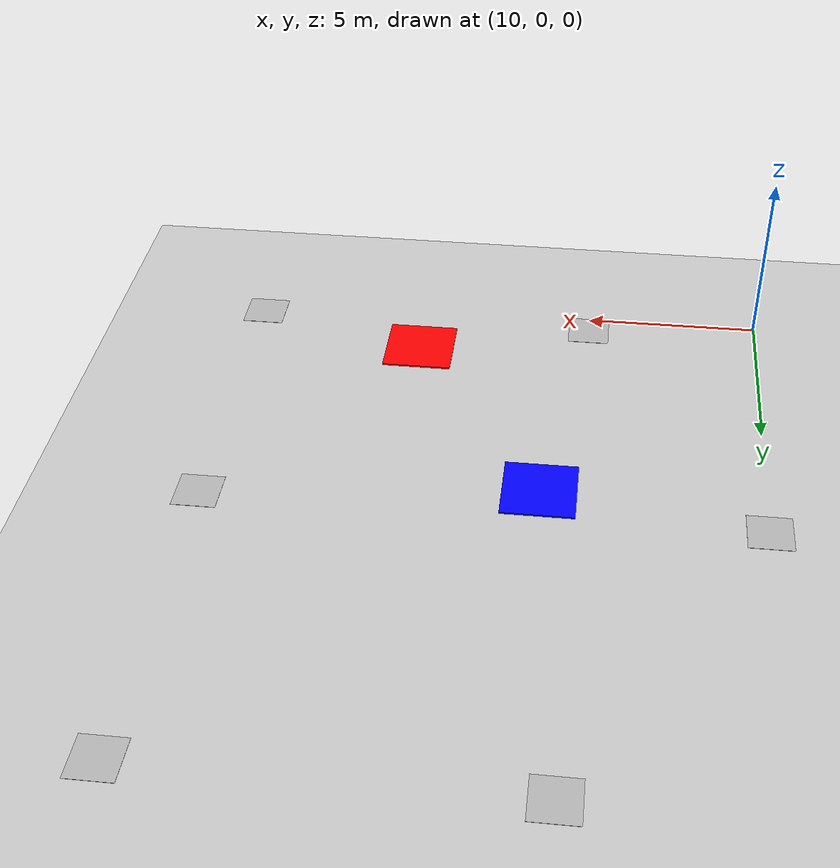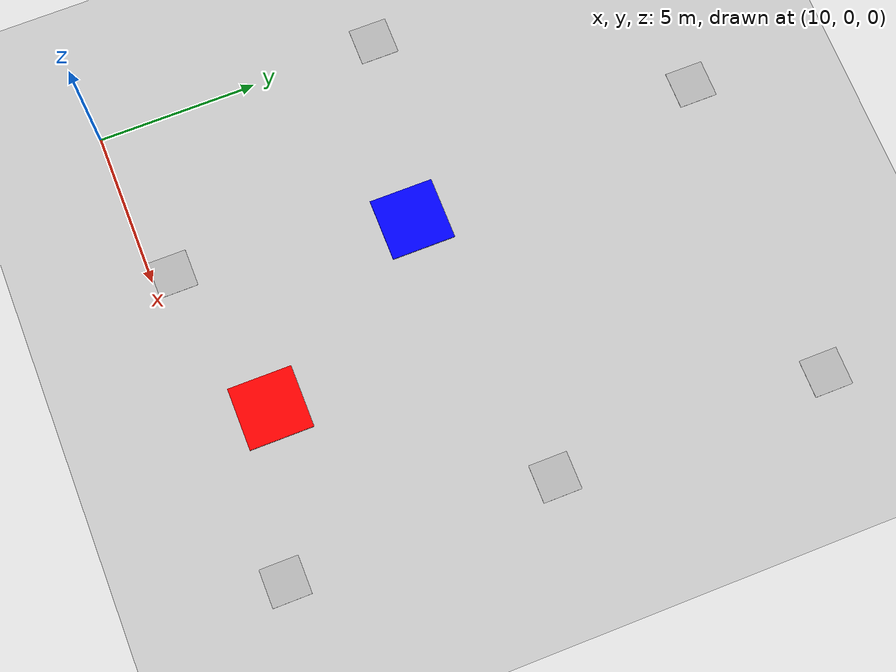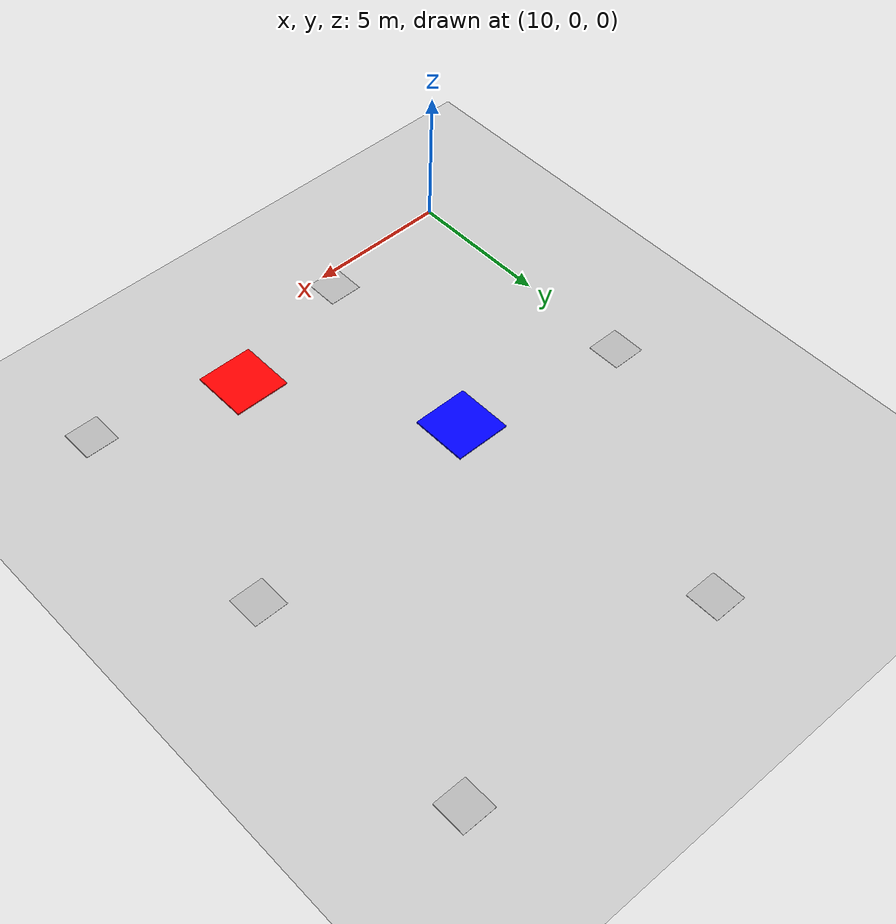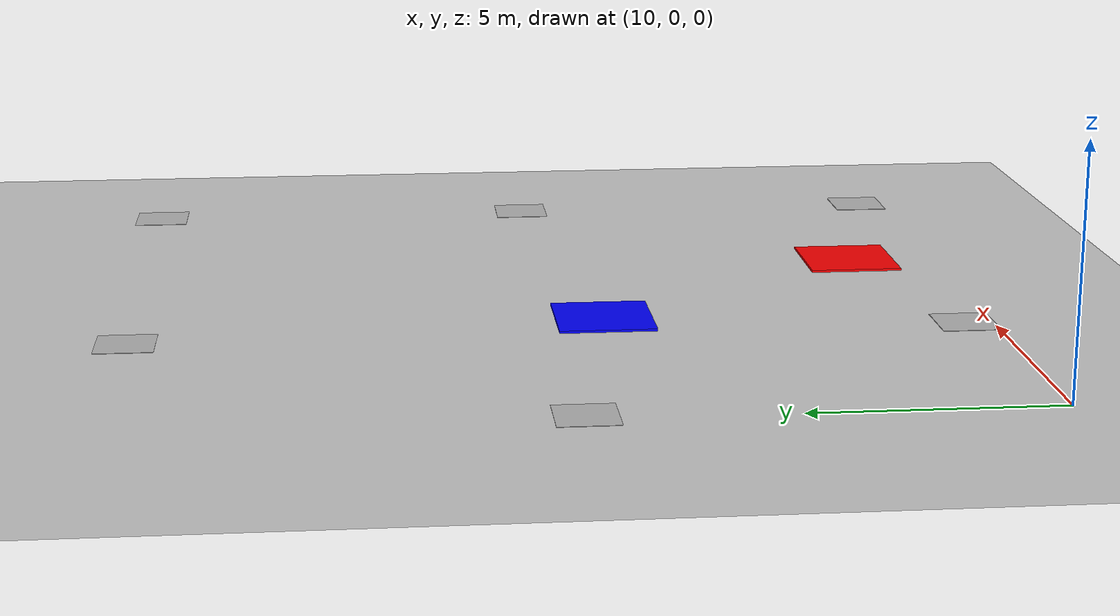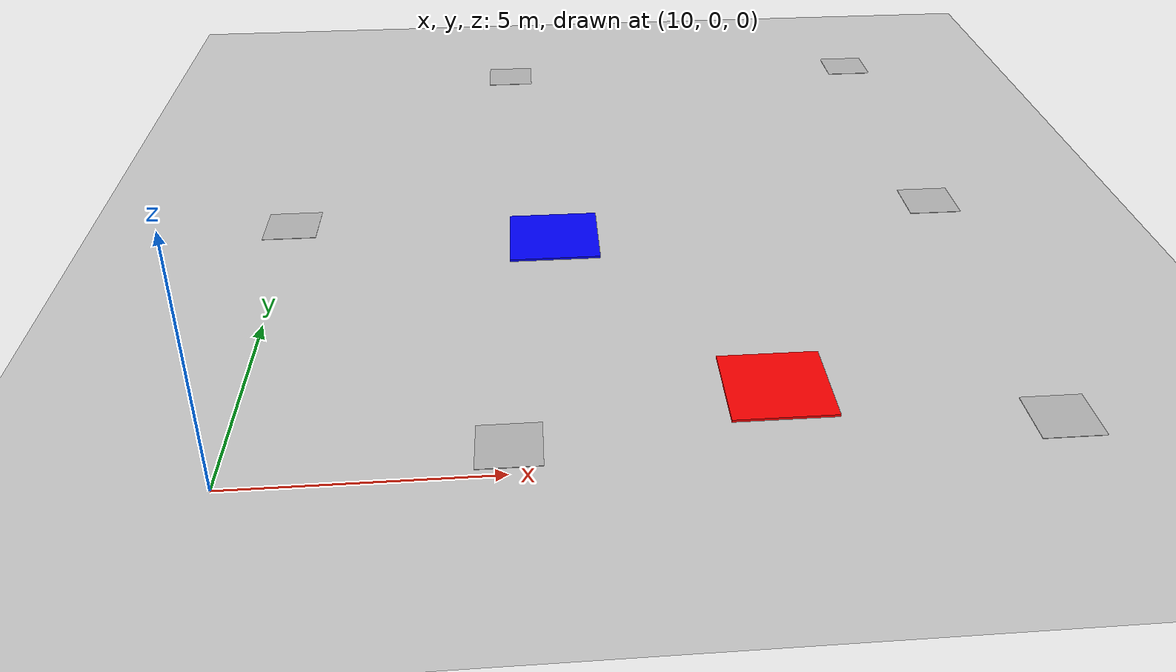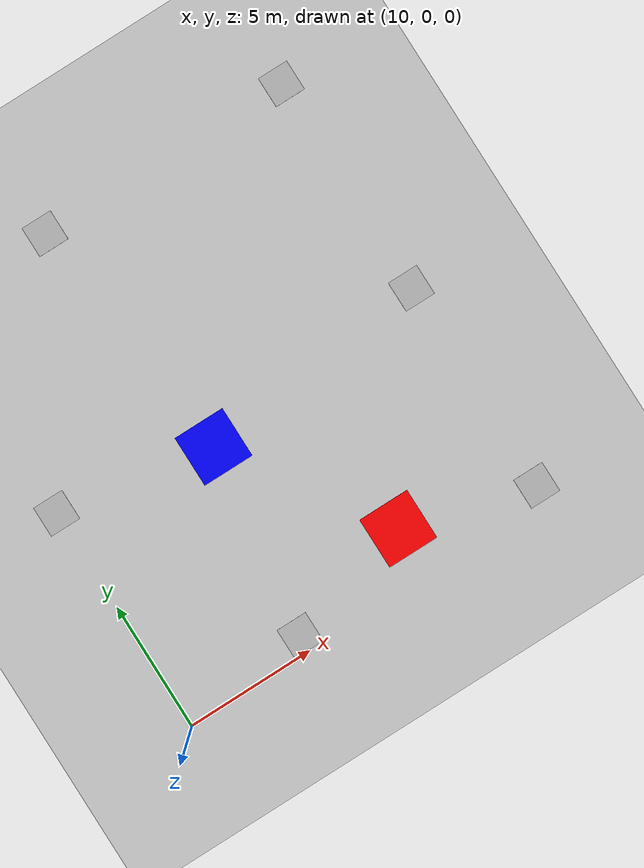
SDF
<?xml version="1.0" ?>

<sdf version="1.6">

  <world name="sancak_world">

    <scene>

      <ambient>0.6 0.6 0.6 1</ambient>

      <background>0.4 0.4 0.4 1</background>

      <shadows>false</shadows>

    </scene>

    <include><uri>model://sun</uri></include>

    <include><uri>model://ground_plane</uri><pose>0 0 0 0 0 0</pose></include>

    <model name="qr1">

      <include><uri>model://qr_plaka_1</uri></include>

      <pose>25 9 0.1 0 0 0</pose>

    </model>

    <model name="qr2">

      <include><uri>model://qr_plaka_2</uri></include>

      <pose>25 17.66 0.1 0 0 0</pose>

    </model>

    <model name="qr3">

      <include><uri>model://qr_plaka_3</uri></include>

      <pose>15 0.66 0.1 0 0 0</pose>

    </model>

    <model name="qr4">

      <include><uri>model://qr_plaka_4</uri></include>

      <pose>10 9 0.1 0 0 0</pose>

    </model>

    <model name="qr5">

      <include><uri>model://qr_plaka_5</uri></include>

      <pose>15 17.66 0.1 0 0 0</pose>

    </model>

    <model name="qr6">

      <include><uri>model://qr_plaka_6</uri></include>

      <pose>25 .66 0.1 0 0 0</pose>

    </model>

    <model name="mavi_hedef">

      <include><uri>model://blue_pad</uri></include>

      <pose>16 8 0.1 0 0 0</pose>

    </model>

    <model name="kirmizi_hedef">

      <include><uri>model://red_pad</uri></include>

      <pose>20 2 0.1 0 0 0</pose>

    </model>

  </world>

</sdf>

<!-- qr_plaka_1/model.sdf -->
<sdf version="1.6">
  <model name="qr_plaka_1">
    <static>true</static>
    <link name="link">
      <visual name="visual">
        <geometry>
          <box><size>1.2 1.2 0.01</size></box>
        </geometry>
        <material>
          <script>
            <uri>model://qr_plaka_1/materials/scripts</uri>
            <uri>model://qr_plaka_1/materials/textures</uri>
            <name>qr_plaka_1/QRMaterial</name>
          </script>
        </material>
      </visual>
      <collision name="collision">
        <geometry>
          <box><size>1.2 1.2 0.01</size></box>
        </geometry>
      </collision>
    </link>
  </model>
</sdf>

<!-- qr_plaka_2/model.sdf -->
<sdf version="1.6">
  <model name="qr_plaka_2">
    <static>true</static>
    <link name="link">
      <visual name="visual">
        <geometry>
          <box><size>1.2 1.2 0.01</size></box>
        </geometry>
        <material>
          <script>
            <uri>model://qr_plaka_2/materials/scripts</uri>
            <uri>model://qr_plaka_2/materials/textures</uri>
            <name>qr_plaka_2/QRMaterial</name>
          </script>
        </material>
      </visual>
      <collision name="collision">
        <geometry>
          <box><size>1.2 1.2 0.01</size></box>
        </geometry>
      </collision>
    </link>
  </model>
</sdf>

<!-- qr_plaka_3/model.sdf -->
<sdf version="1.6">
  <model name="qr_plaka_3">
    <static>true</static>
    <link name="link">
      <visual name="visual">
        <geometry>
          <box><size>1.2 1.2 0.01</size></box>
        </geometry>
        <material>
          <script>
            <uri>model://qr_plaka_3/materials/scripts</uri>
            <uri>model://qr_plaka_3/materials/textures</uri>
            <name>qr_plaka_3/QRMaterial</name>
          </script>
        </material>
      </visual>
      <collision name="collision">
        <geometry>
          <box><size>1.2 1.2 0.01</size></box>
        </geometry>
      </collision>
    </link>
  </model>
</sdf>

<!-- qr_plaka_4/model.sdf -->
<sdf version="1.6">
  <model name="qr_plaka_4">
    <static>true</static>
    <link name="link">
      <visual name="visual">
        <geometry>
          <box><size>1.2 1.2 0.01</size></box>
        </geometry>
        <material>
          <script>
            <uri>model://qr_plaka_4/materials/scripts</uri>
            <uri>model://qr_plaka_4/materials/textures</uri>
            <name>qr_plaka_4/QRMaterial</name>
          </script>
        </material>
      </visual>
      <collision name="collision">
        <geometry>
          <box><size>1.2 1.2 0.01</size></box>
        </geometry>
      </collision>
    </link>
  </model>
</sdf>

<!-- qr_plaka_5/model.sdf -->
<sdf version="1.6">
  <model name="qr_plaka_5">
    <static>true</static>
    <link name="link">
      <visual name="visual">
        <geometry>
          <box><size>1.2 1.2 0.01</size></box>
        </geometry>
        <material>
          <script>
            <uri>model://qr_plaka_5/materials/scripts</uri>
            <uri>model://qr_plaka_5/materials/textures</uri>
            <name>qr_plaka_5/QRMaterial</name>
          </script>
        </material>
      </visual>
      <collision name="collision">
        <geometry>
          <box><size>1.2 1.2 0.01</size></box>
        </geometry>
      </collision>
    </link>
  </model>
</sdf>

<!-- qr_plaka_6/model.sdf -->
<sdf version="1.6">
  <model name="qr_plaka_6">
    <static>true</static>
    <link name="link">
      <visual name="visual">
        <geometry>
          <box><size>1.2 1.2 0.01</size></box>
        </geometry>
        <material>
          <script>
            <uri>model://qr_plaka_6/materials/scripts</uri>
            <uri>model://qr_plaka_6/materials/textures</uri>
            <name>qr_plaka_6/QRMaterial</name>
          </script>
        </material>
      </visual>
      <collision name="collision">
        <geometry>
          <box><size>1.2 1.2 0.01</size></box>
        </geometry>
      </collision>
    </link>
  </model>
</sdf>

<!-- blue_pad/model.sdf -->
<sdf version="1.6">
  <model name="blue_pad">
    <static>true</static>
    <link name="link">
      <visual name="visual">
        <geometry>
          <box><size>2.0 2.0 0.05</size></box>
        </geometry>
        <material>
          <ambient>0 0 1 1</ambient>
          <diffuse>0 0 1 1</diffuse>
        </material>
      </visual>
      <collision name="collision">
        <geometry>
          <box><size>2.0 2.0 0.05</size></box>
        </geometry>
      </collision>
    </link>
  </model>
</sdf>

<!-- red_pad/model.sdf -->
<sdf version="1.6">
  <model name="red_pad">
    <static>true</static>
    <link name="link">
      <visual name="visual">
        <geometry>
          <box><size>2.0 2.0 0.05</size></box>
        </geometry>
        <material>
          <ambient>1 0 0 1</ambient>
          <diffuse>1 0 0 1</diffuse>
        </material>
      </visual>
      <collision name="collision">
        <geometry>
          <box><size>2.0 2.0 0.05</size></box>
        </geometry>
      </collision>
    </link>
  </model>
</sdf>
